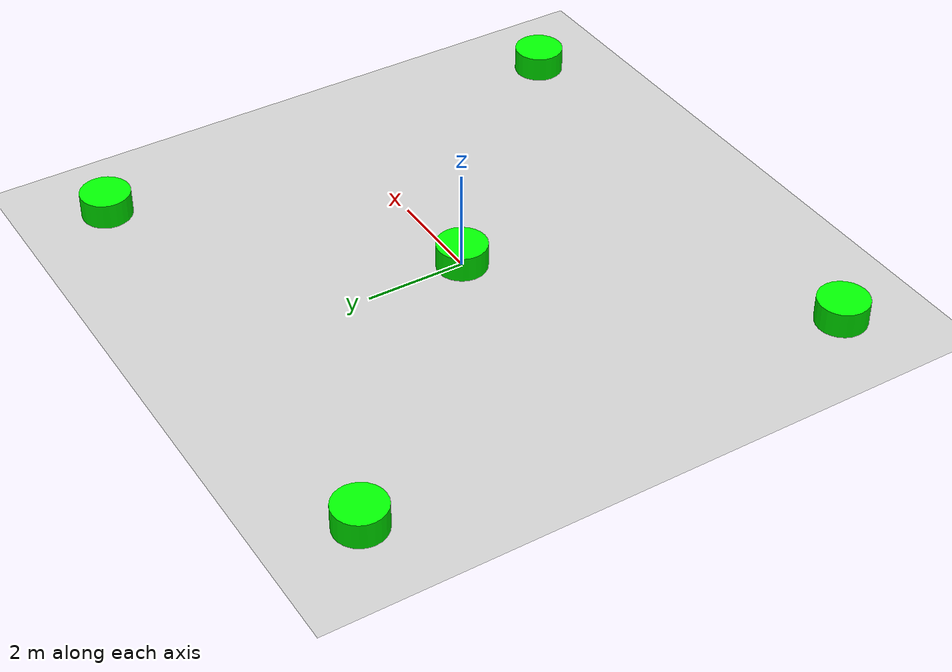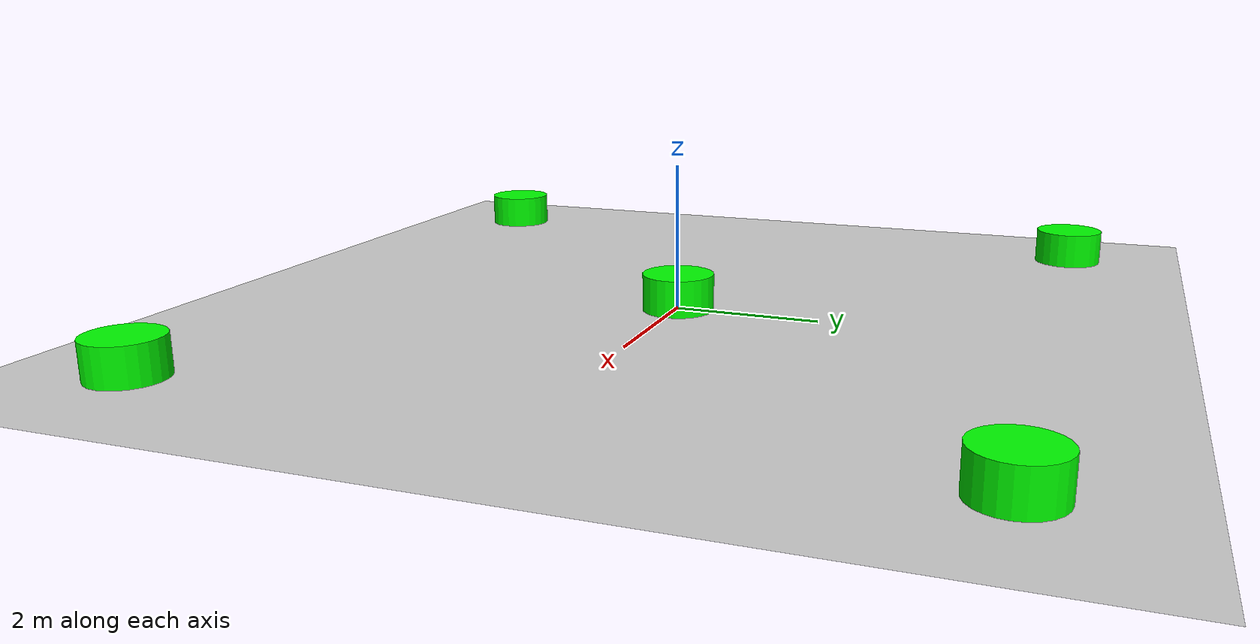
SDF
<?xml version='1.0'?>
<sdf version="1.7">
    <world name="scenario_1">
        <physics name="1ms" type="ignored">
            <max_step_size>0.001</max_step_size>
            <real_time_factor>1.0</real_time_factor>
        </physics>
        <plugin
            filename="libignition-gazebo-physics-system.so"
            name="ignition::gazebo::systems::Physics">
        </plugin>
        <plugin
            filename="libignition-gazebo-user-commands-system.so"
            name="ignition::gazebo::systems::UserCommands">
        </plugin>
        <plugin
            filename="libignition-gazebo-scene-broadcaster-system.so"
            name="ignition::gazebo::systems::SceneBroadcaster">
        </plugin>

        <light type="directional" name="sun">
            <cast_shadows>true</cast_shadows>
            <pose>0 0 10 0 0 0</pose>
            <diffuse>0.8 0.8 0.8 1</diffuse>
            <specular>0.2 0.2 0.2 1</specular>
            <attenuation>
                <range>1000</range>
                <constant>0.9</constant>
                <linear>0.01</linear>
                <quadratic>0.001</quadratic>
            </attenuation>
            <direction>-0.5 0.1 -0.9</direction>
        </light>

        <model name="ground_plane">
            <static>true</static>
            <link name="link">
                <collision name="collision">
                <geometry>
                    <plane>
                    <normal>0 0 1</normal>
                    </plane>
                </geometry>
                </collision>
                <visual name="visual">
                <geometry>
                    <plane>
                    <normal>0 0 1</normal>
                    <size>100 100</size>
                    </plane>
                </geometry>
                <material>
                    <ambient>0.8 0.8 0.8 1</ambient>
                    <diffuse>0.8 0.8 0.8 1</diffuse>
                    <specular>0.8 0.8 0.8 1</specular>
                </material>
                </visual>
            </link>
        </model>
        <model name='cylinder_1'>
          <pose>0 0 0 0 -0 0</pose>
          <link name='cylinder_link'>
            <inertial>
              <inertia>
                <ixx>0.14580000000000001</ixx>
                <ixy>0</ixy>
                <ixz>0</ixz>
                <iyy>0.14580000000000001</iyy>
                <iyz>0</iyz>
                <izz>0.125</izz>
              </inertia>
              <mass>1</mass>
              <pose>0 0 0 0 -0 0</pose>
            </inertial>
            <collision name='cylinder_collision'>
              <geometry>
                <cylinder>
                  <radius>0.5</radius>
                  <length>1</length>
                </cylinder>
              </geometry>
              <surface>
                <friction>
                  <ode/>
                </friction>
                <bounce/>
                <contact/>
              </surface>
            </collision>
            <visual name='cylinder_visual'>
              <geometry>
                <cylinder>
                  <radius>0.5</radius>
                  <length>1</length>
                </cylinder>
              </geometry>
              <material>
                <ambient>0 1 0 1</ambient>
                <diffuse>0 1 0 1</diffuse>
                <specular>0 1 0 1</specular>
              </material>
            </visual>
            <pose>0 0 0 0 -0 0</pose>
            <enable_wind>false</enable_wind>
          </link>
          <static>false</static>
          <self_collide>false</self_collide>
        </model>
        <model name='cylinder_2'>
          <pose>-5 -5 0 0 -0 0</pose>
          <link name='cylinder_link'>
            <inertial>
              <inertia>
                <ixx>0.14580000000000001</ixx>
                <ixy>0</ixy>
                <ixz>0</ixz>
                <iyy>0.14580000000000001</iyy>
                <iyz>0</iyz>
                <izz>0.125</izz>
              </inertia>
              <mass>1</mass>
              <pose>0 0 0 0 -0 0</pose>
            </inertial>
            <collision name='cylinder_collision'>
              <geometry>
                <cylinder>
                  <radius>0.5</radius>
                  <length>1</length>
                </cylinder>
              </geometry>
              <surface>
                <friction>
                  <ode/>
                </friction>
                <bounce/>
                <contact/>
              </surface>
            </collision>
            <visual name='cylinder_visual'>
              <geometry>
                <cylinder>
                  <radius>0.5</radius>
                  <length>1</length>
                </cylinder>
              </geometry>
              <material>
                <ambient>0 1 0 1</ambient>
                <diffuse>0 1 0 1</diffuse>
                <specular>0 1 0 1</specular>
              </material>
            </visual>
            <pose>0 0 0 0 -0 0</pose>
            <enable_wind>false</enable_wind>
          </link>
          <static>false</static>
          <self_collide>false</self_collide>
        </model>
        <model name='cylinder_3'>
          <pose>-5 5 0 0 -0 0</pose>
          <link name='cylinder_link'>
            <inertial>
              <inertia>
                <ixx>0.14580000000000001</ixx>
                <ixy>0</ixy>
                <ixz>0</ixz>
                <iyy>0.14580000000000001</iyy>
                <iyz>0</iyz>
                <izz>0.125</izz>
              </inertia>
              <mass>1</mass>
              <pose>0 0 0 0 -0 0</pose>
            </inertial>
            <collision name='cylinder_collision'>
              <geometry>
                <cylinder>
                  <radius>0.5</radius>
                  <length>1</length>
                </cylinder>
              </geometry>
              <surface>
                <friction>
                  <ode/>
                </friction>
                <bounce/>
                <contact/>
              </surface>
            </collision>
            <visual name='cylinder_visual'>
              <geometry>
                <cylinder>
                  <radius>0.5</radius>
                  <length>1</length>
                </cylinder>
              </geometry>
              <material>
                <ambient>0 1 0 1</ambient>
                <diffuse>0 1 0 1</diffuse>
                <specular>0 1 0 1</specular>
              </material>
            </visual>
            <pose>0 0 0 0 -0 0</pose>
            <enable_wind>false</enable_wind>
          </link>
          <static>false</static>
          <self_collide>false</self_collide>
        </model>
        <model name='cylinder_4'>
          <pose>5 5 0 0 -0 0</pose>
          <link name='cylinder_link'>
            <inertial>
              <inertia>
                <ixx>0.14580000000000001</ixx>
                <ixy>0</ixy>
                <ixz>0</ixz>
                <iyy>0.14580000000000001</iyy>
                <iyz>0</iyz>
                <izz>0.125</izz>
              </inertia>
              <mass>1</mass>
              <pose>0 0 0 0 -0 0</pose>
            </inertial>
            <collision name='cylinder_collision'>
              <geometry>
                <cylinder>
                  <radius>0.5</radius>
                  <length>1</length>
                </cylinder>
              </geometry>
              <surface>
                <friction>
                  <ode/>
                </friction>
                <bounce/>
                <contact/>
              </surface>
            </collision>
            <visual name='cylinder_visual'>
              <geometry>
                <cylinder>
                  <radius>0.5</radius>
                  <length>1</length>
                </cylinder>
              </geometry>
              <material>
                <ambient>0 1 0 1</ambient>
                <diffuse>0 1 0 1</diffuse>
                <specular>0 1 0 1</specular>
              </material>
            </visual>
            <pose>0 0 0 0 -0 0</pose>
            <enable_wind>false</enable_wind>
          </link>
          <static>false</static>
          <self_collide>false</self_collide>
        </model>
        <model name='cylinder_5'>
          <pose>5 -5 0 0 -0 0</pose>
          <link name='cylinder_link'>
            <inertial>
              <inertia>
                <ixx>0.14580000000000001</ixx>
                <ixy>0</ixy>
                <ixz>0</ixz>
                <iyy>0.14580000000000001</iyy>
                <iyz>0</iyz>
                <izz>0.125</izz>
              </inertia>
              <mass>1</mass>
              <pose>0 0 0 0 -0 0</pose>
            </inertial>
            <collision name='cylinder_collision'>
              <geometry>
                <cylinder>
                  <radius>0.5</radius>
                  <length>1</length>
                </cylinder>
              </geometry>
              <surface>
                <friction>
                  <ode/>
                </friction>
                <bounce/>
                <contact/>
              </surface>
            </collision>
            <visual name='cylinder_visual'>
              <geometry>
                <cylinder>
                  <radius>0.5</radius>
                  <length>1</length>
                </cylinder>
              </geometry>
              <material>
                <ambient>0 1 0 1</ambient>
                <diffuse>0 1 0 1</diffuse>
                <specular>0 1 0 1</specular>
              </material>
            </visual>
            <pose>0 0 0 0 -0 0</pose>
            <enable_wind>false</enable_wind>
          </link>
          <static>false</static>
          <self_collide>false</self_collide>
        </model>
  </world>
</sdf>
